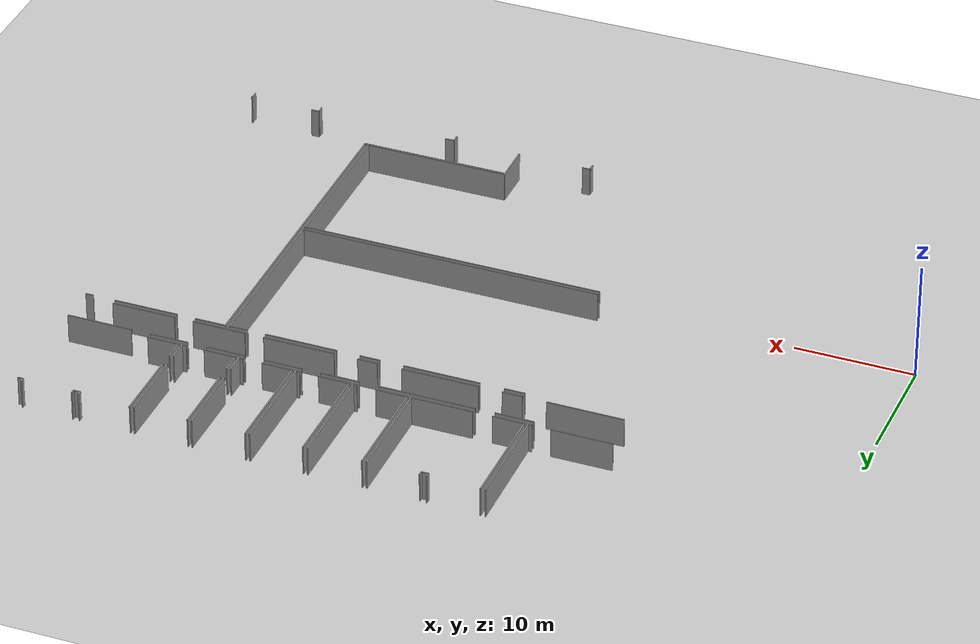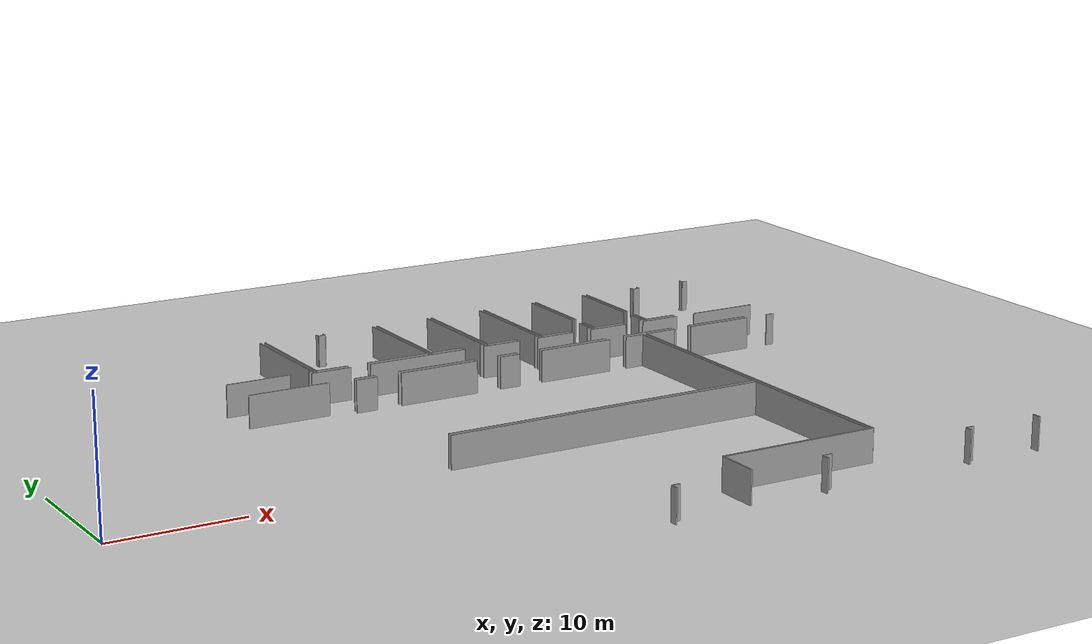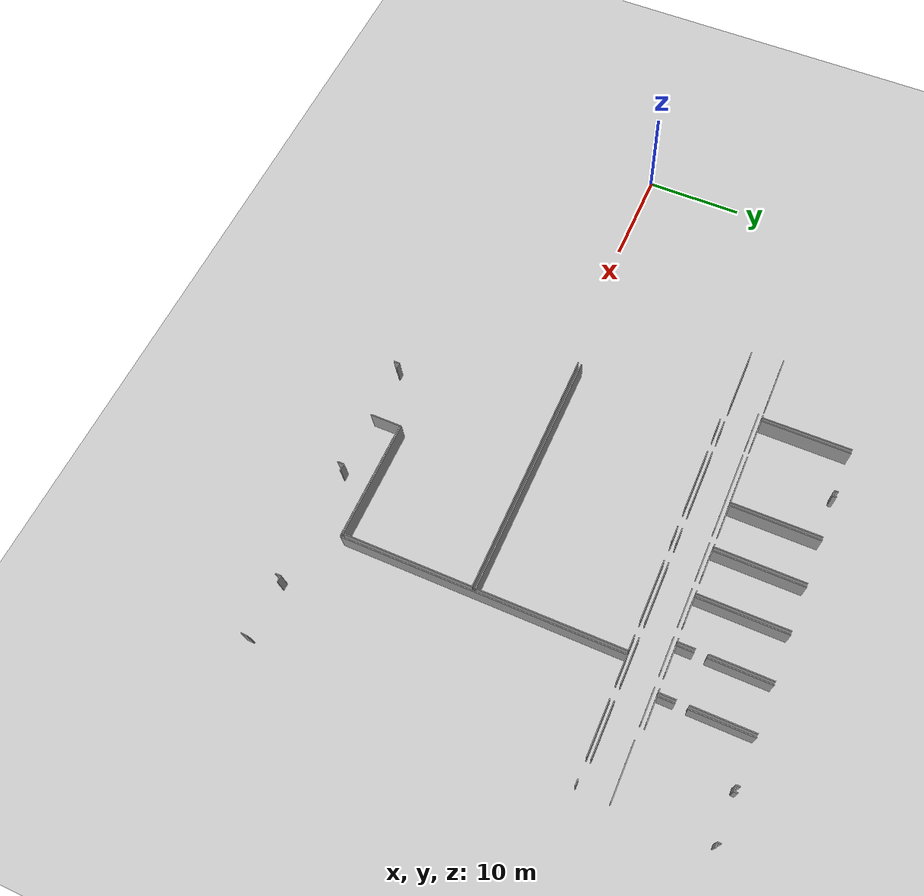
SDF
<sdf version="1.6">
 <world name="default">
  <model name="ground_plane">
   <static>1</static>
   <link name="link">
    <collision name="collision">
     <geometry><plane><normal>0 0 1</normal><size>100 100</size></plane></geometry>
     <surface><friction><ode><mu>100</mu><mu2>50</mu2></ode></friction></surface>
    </collision>
    <visual name="visual">
     <cast_shadows>0</cast_shadows>
     <geometry><plane><normal>0 0 1</normal><size>100 100</size></plane></geometry>
     <material>
      <script><uri>file://media/materials/scripts/gazebo.material</uri><name>Gazebo/Grey</name></script>
     </material>
    </visual>
   </link>
  </model>
  <model name="50010535_PLAN2">
   <static>1</static>
   <link name="Wall_171">
    <collision name="Wall_171_Collision">
     <geometry><box><size>3.20908750151 0.1 2.5</size></box></geometry>
     <pose>1.60454375075 0 1.25 0 0 0</pose>
    </collision>
    <visual name="Wall_171_Visual">
     <pose>1.60454375075 0 1.25 0 0 0</pose>
     <geometry><box><size>3.20908750151 0.1 2.5</size></box></geometry>
     <material>
      <script><uri>file://media/materials/scripts/gazebo.material</uri><name>Gazebo/Grey</name></script>
      <ambient>1 1 1 1</ambient>
     </material>
    </visual>
    <pose>126.736618743 -9.74515098187 0 0 0 0.0</pose>
   </link>
   <link name="Wall_172">
    <collision name="Wall_172_Collision">
     <geometry><box><size>7.99933927562 0.1 2.5</size></box></geometry>
     <pose>3.99966963781 0 1.25 0 0 0</pose>
    </collision>
    <visual name="Wall_172_Visual">
     <pose>3.99966963781 0 1.25 0 0 0</pose>
     <geometry><box><size>7.99933927562 0.1 2.5</size></box></geometry>
     <material>
      <script><uri>file://media/materials/scripts/gazebo.material</uri><name>Gazebo/Grey</name></script>
      <ambient>1 1 1 1</ambient>
     </material>
    </visual>
    <pose>131.553553617 -9.74515098187 0 0 0 0.0</pose>
   </link>
   <link name="Wall_173">
    <collision name="Wall_173_Collision">
     <geometry><box><size>3.18215027668 0.1 2.5</size></box></geometry>
     <pose>1.59107513834 0 1.25 0 0 0</pose>
    </collision>
    <visual name="Wall_173_Visual">
     <pose>1.59107513834 0 1.25 0 0 0</pose>
     <geometry><box><size>3.18215027668 0.1 2.5</size></box></geometry>
     <material>
      <script><uri>file://media/materials/scripts/gazebo.material</uri><name>Gazebo/Grey</name></script>
      <ambient>1 1 1 1</ambient>
     </material>
    </visual>
    <pose>141.166076885 -9.74515098187 0 0 0 0.0</pose>
   </link>
   <link name="Wall_174">
    <collision name="Wall_174_Collision">
     <geometry><box><size>3.15978729757 0.1 2.5</size></box></geometry>
     <pose>1.57989364879 0 1.25 0 0 0</pose>
    </collision>
    <visual name="Wall_174_Visual">
     <pose>1.57989364879 0 1.25 0 0 0</pose>
     <geometry><box><size>3.15978729757 0.1 2.5</size></box></geometry>
     <material>
      <script><uri>file://media/materials/scripts/gazebo.material</uri><name>Gazebo/Grey</name></script>
      <ambient>1 1 1 1</ambient>
     </material>
    </visual>
    <pose>145.961411155 -9.74515098187 0 0 0 0.0</pose>
   </link>
   <link name="Wall_175">
    <collision name="Wall_175_Collision">
     <geometry><box><size>3.24263197017 0.1 2.5</size></box></geometry>
     <pose>1.62131598508 0 1.25 0 0 0</pose>
    </collision>
    <visual name="Wall_175_Visual">
     <pose>1.62131598508 0 1.25 0 0 0</pose>
     <geometry><box><size>3.24263197017 0.1 2.5</size></box></geometry>
     <material>
      <script><uri>file://media/materials/scripts/gazebo.material</uri><name>Gazebo/Grey</name></script>
      <ambient>1 1 1 1</ambient>
     </material>
    </visual>
    <pose>150.733365946 -9.74515098187 0 0 0 0.0</pose>
   </link>
   <link name="Wall_176">
    <collision name="Wall_176_Collision">
     <geometry><box><size>3.18189615192 0.1 2.5</size></box></geometry>
     <pose>1.59094807596 0 1.25 0 0 0</pose>
    </collision>
    <visual name="Wall_176_Visual">
     <pose>1.59094807596 0 1.25 0 0 0</pose>
     <geometry><box><size>3.18189615192 0.1 2.5</size></box></geometry>
     <material>
      <script><uri>file://media/materials/scripts/gazebo.material</uri><name>Gazebo/Grey</name></script>
      <ambient>1 1 1 1</ambient>
     </material>
    </visual>
    <pose>155.564785932 -9.74515098187 0 0 0 0.0</pose>
   </link>
   <link name="Wall_177">
    <collision name="Wall_177_Collision">
     <geometry><box><size>5.46749426631 0.1 2.5</size></box></geometry>
     <pose>2.73374713316 0 1.25 0 0 0</pose>
    </collision>
    <visual name="Wall_177_Visual">
     <pose>2.73374713316 0 1.25 0 0 0</pose>
     <geometry><box><size>5.46749426631 0.1 2.5</size></box></geometry>
     <material>
      <script><uri>file://media/materials/scripts/gazebo.material</uri><name>Gazebo/Grey</name></script>
      <ambient>1 1 1 1</ambient>
     </material>
    </visual>
    <pose>160.398747165 -9.74515098187 0 0 0 0.0</pose>
   </link>
   <link name="Wall_179">
    <collision name="Wall_179_Collision">
     <geometry><box><size>5.31908540498 0.1 2.5</size></box></geometry>
     <pose>2.65954270249 0 1.25 0 0 0</pose>
    </collision>
    <visual name="Wall_179_Visual">
     <pose>2.65954270249 0 1.25 0 0 0</pose>
     <geometry><box><size>5.31908540498 0.1 2.5</size></box></geometry>
     <material>
      <script><uri>file://media/materials/scripts/gazebo.material</uri><name>Gazebo/Grey</name></script>
      <ambient>1 1 1 1</ambient>
     </material>
    </visual>
    <pose>163.300851953 -12.5499259862 0 0 0 3.14159265359</pose>
   </link>
   <link name="Wall_180">
    <collision name="Wall_180_Collision">
     <geometry><box><size>4.42177086841 0.1 2.5</size></box></geometry>
     <pose>2.2108854342 0 1.25 0 0 0</pose>
    </collision>
    <visual name="Wall_180_Visual">
     <pose>2.2108854342 0 1.25 0 0 0</pose>
     <geometry><box><size>4.42177086841 0.1 2.5</size></box></geometry>
     <material>
      <script><uri>file://media/materials/scripts/gazebo.material</uri><name>Gazebo/Grey</name></script>
      <ambient>1 1 1 1</ambient>
     </material>
    </visual>
    <pose>156.402127024 -12.5499259862 0 0 0 3.14159265359</pose>
   </link>
   <link name="Wall_181">
    <collision name="Wall_181_Collision">
     <geometry><box><size>5.93965807513 0.1 2.5</size></box></geometry>
     <pose>2.96982903757 0 1.25 0 0 0</pose>
    </collision>
    <visual name="Wall_181_Visual">
     <pose>2.96982903757 0 1.25 0 0 0</pose>
     <geometry><box><size>5.93965807513 0.1 2.5</size></box></geometry>
     <material>
      <script><uri>file://media/materials/scripts/gazebo.material</uri><name>Gazebo/Grey</name></script>
      <ambient>1 1 1 1</ambient>
     </material>
    </visual>
    <pose>150.39207639 -12.5499259862 0 0 0 3.14159265359</pose>
   </link>
   <link name="Wall_182">
    <collision name="Wall_182_Collision">
     <geometry><box><size>1.6591805747 0.1 2.5</size></box></geometry>
     <pose>0.829590287352 0 1.25 0 0 0</pose>
    </collision>
    <visual name="Wall_182_Visual">
     <pose>0.829590287352 0 1.25 0 0 0</pose>
     <geometry><box><size>1.6591805747 0.1 2.5</size></box></geometry>
     <material>
      <script><uri>file://media/materials/scripts/gazebo.material</uri><name>Gazebo/Grey</name></script>
      <ambient>1 1 1 1</ambient>
     </material>
    </visual>
    <pose>142.463892048 -12.5499259862 0 0 0 3.14159265359</pose>
   </link>
   <link name="Wall_183">
    <collision name="Wall_183_Collision">
     <geometry><box><size>6.39428727534 0.1 2.5</size></box></geometry>
     <pose>3.19714363767 0 1.25 0 0 0</pose>
    </collision>
    <visual name="Wall_183_Visual">
     <pose>3.19714363767 0 1.25 0 0 0</pose>
     <geometry><box><size>6.39428727534 0.1 2.5</size></box></geometry>
     <material>
      <script><uri>file://media/materials/scripts/gazebo.material</uri><name>Gazebo/Grey</name></script>
      <ambient>1 1 1 1</ambient>
     </material>
    </visual>
    <pose>138.794330477 -12.5499259862 0 0 0 3.14159265359</pose>
   </link>
   <link name="Wall_184">
    <collision name="Wall_184_Collision">
     <geometry><box><size>1.64799908515 0.1 2.5</size></box></geometry>
     <pose>0.823999542575 0 1.25 0 0 0</pose>
    </collision>
    <visual name="Wall_184_Visual">
     <pose>0.823999542575 0 1.25 0 0 0</pose>
     <geometry><box><size>1.64799908515 0.1 2.5</size></box></geometry>
     <material>
      <script><uri>file://media/materials/scripts/gazebo.material</uri><name>Gazebo/Grey</name></script>
      <ambient>1 1 1 1</ambient>
     </material>
    </visual>
    <pose>130.455480518 -12.5499259862 0 0 0 3.14159265359</pose>
   </link>
   <link name="Wall_185">
    <collision name="Wall_185_Collision">
     <geometry><box><size>6.372178421 0.1 2.5</size></box></geometry>
     <pose>3.1860892105 0 1.25 0 0 0</pose>
    </collision>
    <visual name="Wall_185_Visual">
     <pose>3.1860892105 0 1.25 0 0 0</pose>
     <geometry><box><size>6.372178421 0.1 2.5</size></box></geometry>
     <material>
      <script><uri>file://media/materials/scripts/gazebo.material</uri><name>Gazebo/Grey</name></script>
      <ambient>1 1 1 1</ambient>
     </material>
    </visual>
    <pose>126.808027801 -12.5499259862 0 0 0 3.14159265359</pose>
   </link>
   <link name="Wall_246">
    <collision name="Wall_246_Collision">
     <geometry><box><size>0.311811083652 0.1 2.5</size></box></geometry>
     <pose>0.155905541826 0 1.25 0 0 0</pose>
    </collision>
    <visual name="Wall_246_Visual">
     <pose>0.155905541826 0 1.25 0 0 0</pose>
     <geometry><box><size>0.311811083652 0.1 2.5</size></box></geometry>
     <material>
      <script><uri>file://media/materials/scripts/gazebo.material</uri><name>Gazebo/Grey</name></script>
      <ambient>1 1 1 1</ambient>
     </material>
    </visual>
    <pose>127.042839082 -9.28518516166 0 0 0 3.14159265359</pose>
   </link>
   <link name="Wall_247">
    <collision name="Wall_247_Collision">
     <geometry><box><size>5.04361416237 0.1 2.5</size></box></geometry>
     <pose>2.52180708119 0 1.25 0 0 0</pose>
    </collision>
    <visual name="Wall_247_Visual">
     <pose>2.52180708119 0 1.25 0 0 0</pose>
     <geometry><box><size>5.04361416237 0.1 2.5</size></box></geometry>
     <material>
      <script><uri>file://media/materials/scripts/gazebo.material</uri><name>Gazebo/Grey</name></script>
      <ambient>1 1 1 1</ambient>
     </material>
    </visual>
    <pose>125.197639181 -9.28518516166 0 0 0 3.14159265359</pose>
   </link>
   <link name="Wall_252">
    <collision name="Wall_252_Collision">
     <geometry><box><size>9.06490162756 0.1 2.5</size></box></geometry>
     <pose>4.53245081378 0 1.25 0 0 0</pose>
    </collision>
    <visual name="Wall_252_Visual">
     <pose>4.53245081378 0 1.25 0 0 0</pose>
     <geometry><box><size>9.06490162756 0.1 2.5</size></box></geometry>
     <material>
      <script><uri>file://media/materials/scripts/gazebo.material</uri><name>Gazebo/Grey</name></script>
      <ambient>1 1 1 1</ambient>
     </material>
    </visual>
    <pose>126.972700647 -0.220554881419 0 0 0 -1.56305888659</pose>
   </link>
   <link name="Wall_253">
    <collision name="Wall_253_Collision">
     <geometry><box><size>5.07233026054 0.1 2.5</size></box></geometry>
     <pose>2.53616513027 0 1.25 0 0 0</pose>
    </collision>
    <visual name="Wall_253_Visual">
     <pose>2.53616513027 0 1.25 0 0 0</pose>
     <geometry><box><size>5.07233026054 0.1 2.5</size></box></geometry>
     <material>
      <script><uri>file://media/materials/scripts/gazebo.material</uri><name>Gazebo/Grey</name></script>
      <ambient>1 1 1 1</ambient>
     </material>
    </visual>
    <pose>136.648500982 -9.27654491973 0 0 0 3.14159265359</pose>
   </link>
   <link name="Wall_254">
    <collision name="Wall_254_Collision">
     <geometry><box><size>2.59410557613 0.1 2.5</size></box></geometry>
     <pose>1.29705278807 0 1.25 0 0 0</pose>
    </collision>
    <visual name="Wall_254_Visual">
     <pose>1.29705278807 0 1.25 0 0 0</pose>
     <geometry><box><size>2.59410557613 0.1 2.5</size></box></geometry>
     <material>
      <script><uri>file://media/materials/scripts/gazebo.material</uri><name>Gazebo/Grey</name></script>
      <ambient>1 1 1 1</ambient>
     </material>
    </visual>
    <pose>129.96146198 -9.27654491973 0 0 0 3.14159265359</pose>
   </link>
   <link name="Wall_255">
    <collision name="Wall_255_Collision">
     <geometry><box><size>9.05682865003 0.1 2.5</size></box></geometry>
     <pose>4.52841432501 0 1.25 0 0 0</pose>
    </collision>
    <visual name="Wall_255_Visual">
     <pose>4.52841432501 0 1.25 0 0 0</pose>
     <geometry><box><size>9.05682865003 0.1 2.5</size></box></geometry>
     <material>
      <script><uri>file://media/materials/scripts/gazebo.material</uri><name>Gazebo/Grey</name></script>
      <ambient>1 1 1 1</ambient>
     </material>
    </visual>
    <pose>127.367356404 -9.27654491973 0 0 0 1.57079632679</pose>
   </link>
   <link name="Wall_256">
    <collision name="Wall_256_Collision">
     <geometry><box><size>0.372597726854 0.1 2.5</size></box></geometry>
     <pose>0.186298863427 0 1.25 0 0 0</pose>
    </collision>
    <visual name="Wall_256_Visual">
     <pose>0.186298863427 0 1.25 0 0 0</pose>
     <geometry><box><size>0.372597726854 0.1 2.5</size></box></geometry>
     <material>
      <script><uri>file://media/materials/scripts/gazebo.material</uri><name>Gazebo/Grey</name></script>
      <ambient>1 1 1 1</ambient>
     </material>
    </visual>
    <pose>131.719497087 -0.219716269703 0 0 0 -1.57079632679</pose>
   </link>
   <link name="Wall_257">
    <collision name="Wall_257_Collision">
     <geometry><box><size>0.563648723341 0.1 2.5</size></box></geometry>
     <pose>0.28182436167 0 1.25 0 0 0</pose>
    </collision>
    <visual name="Wall_257_Visual">
     <pose>0.28182436167 0 1.25 0 0 0</pose>
     <geometry><box><size>0.563648723341 0.1 2.5</size></box></geometry>
     <material>
      <script><uri>file://media/materials/scripts/gazebo.material</uri><name>Gazebo/Grey</name></script>
      <ambient>1 1 1 1</ambient>
     </material>
    </visual>
    <pose>131.719497087 -0.592313996557 0 0 0 0.0</pose>
   </link>
   <link name="Wall_258">
    <collision name="Wall_258_Collision">
     <geometry><box><size>0.363042635782 0.1 2.5</size></box></geometry>
     <pose>0.181521317891 0 1.25 0 0 0</pose>
    </collision>
    <visual name="Wall_258_Visual">
     <pose>0.181521317891 0 1.25 0 0 0</pose>
     <geometry><box><size>0.363042635782 0.1 2.5</size></box></geometry>
     <material>
      <script><uri>file://media/materials/scripts/gazebo.material</uri><name>Gazebo/Grey</name></script>
      <ambient>1 1 1 1</ambient>
     </material>
    </visual>
    <pose>132.28314581 -0.592313996557 0 0 0 1.57079632679</pose>
   </link>
   <link name="Wall_259">
    <collision name="Wall_259_Collision">
     <geometry><box><size>9.04735173394 0.1 2.5</size></box></geometry>
     <pose>4.52367586697 0 1.25 0 0 0</pose>
    </collision>
    <visual name="Wall_259_Visual">
     <pose>4.52367586697 0 1.25 0 0 0</pose>
     <geometry><box><size>9.04735173394 0.1 2.5</size></box></geometry>
     <material>
      <script><uri>file://media/materials/scripts/gazebo.material</uri><name>Gazebo/Grey</name></script>
      <ambient>1 1 1 1</ambient>
     </material>
    </visual>
    <pose>136.610890517 -0.229271360775 0 0 0 -1.56663924588</pose>
   </link>
   <link name="Wall_260">
    <collision name="Wall_260_Collision">
     <geometry><box><size>0.284111484533 0.1 2.5</size></box></geometry>
     <pose>0.142055742267 0 1.25 0 0 0</pose>
    </collision>
    <visual name="Wall_260_Visual">
     <pose>0.142055742267 0 1.25 0 0 0</pose>
     <geometry><box><size>0.284111484533 0.1 2.5</size></box></geometry>
     <material>
      <script><uri>file://media/materials/scripts/gazebo.material</uri><name>Gazebo/Grey</name></script>
      <ambient>1 1 1 1</ambient>
     </material>
    </visual>
    <pose>141.427317141 -9.25392781586 0 0 0 3.14159265359</pose>
   </link>
   <link name="Wall_261">
    <collision name="Wall_261_Collision">
     <geometry><box><size>2.60096694472 0.1 2.5</size></box></geometry>
     <pose>1.30048347236 0 1.25 0 0 0</pose>
    </collision>
    <visual name="Wall_261_Visual">
     <pose>1.30048347236 0 1.25 0 0 0</pose>
     <geometry><box><size>2.60096694472 0.1 2.5</size></box></geometry>
     <material>
      <script><uri>file://media/materials/scripts/gazebo.material</uri><name>Gazebo/Grey</name></script>
      <ambient>1 1 1 1</ambient>
     </material>
    </visual>
    <pose>139.567632129 -9.25392781586 0 0 0 3.14159265359</pose>
   </link>
   <link name="Wall_262">
    <collision name="Wall_262_Collision">
     <geometry><box><size>9.03421154616 0.1 2.5</size></box></geometry>
     <pose>4.51710577308 0 1.25 0 0 0</pose>
    </collision>
    <visual name="Wall_262_Visual">
     <pose>4.51710577308 0 1.25 0 0 0</pose>
     <geometry><box><size>9.03421154616 0.1 2.5</size></box></geometry>
     <material>
      <script><uri>file://media/materials/scripts/gazebo.material</uri><name>Gazebo/Grey</name></script>
      <ambient>1 1 1 1</ambient>
     </material>
    </visual>
    <pose>136.966665184 -9.25392781586 0 0 0 1.57079632679</pose>
   </link>
   <link name="Wall_263">
    <collision name="Wall_263_Collision">
     <geometry><box><size>9.03422856271 0.1 2.5</size></box></geometry>
     <pose>4.51711428135 0 1.25 0 0 0</pose>
    </collision>
    <visual name="Wall_263_Visual">
     <pose>4.51711428135 0 1.25 0 0 0</pose>
     <geometry><box><size>9.03422856271 0.1 2.5</size></box></geometry>
     <material>
      <script><uri>file://media/materials/scripts/gazebo.material</uri><name>Gazebo/Grey</name></script>
      <ambient>1 1 1 1</ambient>
     </material>
    </visual>
    <pose>141.44485175 -0.219716269703 0 0 0 -1.57273723625</pose>
   </link>
   <link name="Wall_264">
    <collision name="Wall_264_Collision">
     <geometry><box><size>0.283094985483 0.1 2.5</size></box></geometry>
     <pose>0.141547492742 0 1.25 0 0 0</pose>
    </collision>
    <visual name="Wall_264_Visual">
     <pose>0.141547492742 0 1.25 0 0 0</pose>
     <geometry><box><size>0.283094985483 0.1 2.5</size></box></geometry>
     <material>
      <script><uri>file://media/materials/scripts/gazebo.material</uri><name>Gazebo/Grey</name></script>
      <ambient>1 1 1 1</ambient>
     </material>
    </visual>
    <pose>146.236628273 -9.28518516166 0 0 0 3.14159265359</pose>
   </link>
   <link name="Wall_265">
    <collision name="Wall_265_Collision">
     <geometry><box><size>2.56157760653 0.1 2.5</size></box></geometry>
     <pose>1.28078880326 0 1.25 0 0 0</pose>
    </collision>
    <visual name="Wall_265_Visual">
     <pose>1.28078880326 0 1.25 0 0 0</pose>
     <geometry><box><size>2.56157760653 0.1 2.5</size></box></geometry>
     <material>
      <script><uri>file://media/materials/scripts/gazebo.material</uri><name>Gazebo/Grey</name></script>
      <ambient>1 1 1 1</ambient>
     </material>
    </visual>
    <pose>144.368557143 -9.28518516166 0 0 0 3.14159265359</pose>
   </link>
   <link name="Wall_266">
    <collision name="Wall_266_Collision">
     <geometry><box><size>9.06656162843 0.1 2.5</size></box></geometry>
     <pose>4.53328081422 0 1.25 0 0 0</pose>
    </collision>
    <visual name="Wall_266_Visual">
     <pose>4.53328081422 0 1.25 0 0 0</pose>
     <geometry><box><size>9.06656162843 0.1 2.5</size></box></geometry>
     <material>
      <script><uri>file://media/materials/scripts/gazebo.material</uri><name>Gazebo/Grey</name></script>
      <ambient>1 1 1 1</ambient>
     </material>
    </visual>
    <pose>141.806979537 -9.28518516166 0 0 0 1.57079632679</pose>
   </link>
   <link name="Wall_267">
    <collision name="Wall_267_Collision">
     <geometry><box><size>9.06660472133 0.1 2.5</size></box></geometry>
     <pose>4.53330236066 0 1.25 0 0 0</pose>
    </collision>
    <visual name="Wall_267_Visual">
     <pose>4.53330236066 0 1.25 0 0 0</pose>
     <geometry><box><size>9.06660472133 0.1 2.5</size></box></geometry>
     <material>
      <script><uri>file://media/materials/scripts/gazebo.material</uri><name>Gazebo/Grey</name></script>
      <ambient>1 1 1 1</ambient>
     </material>
    </visual>
    <pose>146.208674549 -0.218623533224 0 0 0 -1.56771316954</pose>
   </link>
   <link name="Wall_268">
    <collision name="Wall_268_Collision">
     <geometry><box><size>0.323246697966 0.1 2.5</size></box></geometry>
     <pose>0.161623348983 0 1.25 0 0 0</pose>
    </collision>
    <visual name="Wall_268_Visual">
     <pose>0.161623348983 0 1.25 0 0 0</pose>
     <geometry><box><size>0.323246697966 0.1 2.5</size></box></geometry>
     <material>
      <script><uri>file://media/materials/scripts/gazebo.material</uri><name>Gazebo/Grey</name></script>
      <ambient>1 1 1 1</ambient>
     </material>
    </visual>
    <pose>151.035012039 -9.30399039408 0 0 0 3.14159265359</pose>
   </link>
   <link name="Wall_269">
    <collision name="Wall_269_Collision">
     <geometry><box><size>2.55725748556 0.1 2.5</size></box></geometry>
     <pose>1.27862874278 0 1.25 0 0 0</pose>
    </collision>
    <visual name="Wall_269_Visual">
     <pose>1.27862874278 0 1.25 0 0 0</pose>
     <geometry><box><size>2.55725748556 0.1 2.5</size></box></geometry>
     <material>
      <script><uri>file://media/materials/scripts/gazebo.material</uri><name>Gazebo/Grey</name></script>
      <ambient>1 1 1 1</ambient>
     </material>
    </visual>
    <pose>149.128059821 -9.30399039408 0 0 0 3.14159265359</pose>
   </link>
   <link name="Wall_270">
    <collision name="Wall_270_Collision">
     <geometry><box><size>9.08536686086 0.1 2.5</size></box></geometry>
     <pose>4.54268343043 0 1.25 0 0 0</pose>
    </collision>
    <visual name="Wall_270_Visual">
     <pose>4.54268343043 0 1.25 0 0 0</pose>
     <geometry><box><size>9.08536686086 0.1 2.5</size></box></geometry>
     <material>
      <script><uri>file://media/materials/scripts/gazebo.material</uri><name>Gazebo/Grey</name></script>
      <ambient>1 1 1 1</ambient>
     </material>
    </visual>
    <pose>146.570802335 -9.30399039408 0 0 0 1.57079632679</pose>
   </link>
   <link name="Wall_271">
    <collision name="Wall_271_Collision">
     <geometry><box><size>6.20417654047 0.1 2.5</size></box></geometry>
     <pose>3.10208827024 0 1.25 0 0 0</pose>
    </collision>
    <visual name="Wall_271_Visual">
     <pose>3.10208827024 0 1.25 0 0 0</pose>
     <geometry><box><size>6.20417654047 0.1 2.5</size></box></geometry>
     <material>
      <script><uri>file://media/materials/scripts/gazebo.material</uri><name>Gazebo/Grey</name></script>
      <ambient>1 1 1 1</ambient>
     </material>
    </visual>
    <pose>151.032724916 -0.218623533224 0 0 0 -1.57079632679</pose>
   </link>
   <link name="Wall_272">
    <collision name="Wall_272_Collision">
     <geometry><box><size>1.69928300139 0.1 2.5</size></box></geometry>
     <pose>0.849641500696 0 1.25 0 0 0</pose>
    </collision>
    <visual name="Wall_272_Visual">
     <pose>0.849641500696 0 1.25 0 0 0</pose>
     <geometry><box><size>1.69928300139 0.1 2.5</size></box></geometry>
     <material>
      <script><uri>file://media/materials/scripts/gazebo.material</uri><name>Gazebo/Grey</name></script>
      <ambient>1 1 1 1</ambient>
     </material>
    </visual>
    <pose>151.032724916 -7.60470893185 0 0 0 -1.56945039233</pose>
   </link>
   <link name="Wall_273">
    <collision name="Wall_273_Collision">
     <geometry><box><size>0.353741669473 0.1 2.5</size></box></geometry>
     <pose>0.176870834736 0 1.25 0 0 0</pose>
    </collision>
    <visual name="Wall_273_Visual">
     <pose>0.176870834736 0 1.25 0 0 0</pose>
     <geometry><box><size>0.353741669473 0.1 2.5</size></box></geometry>
     <material>
      <script><uri>file://media/materials/scripts/gazebo.material</uri><name>Gazebo/Grey</name></script>
      <ambient>1 1 1 1</ambient>
     </material>
    </visual>
    <pose>155.871768645 -9.29026765691 0 0 0 3.14159265359</pose>
   </link>
   <link name="Wall_274">
    <collision name="Wall_274_Collision">
     <geometry><box><size>2.63629028672 0.1 2.5</size></box></geometry>
     <pose>1.31814514336 0 1.25 0 0 0</pose>
    </collision>
    <visual name="Wall_274_Visual">
     <pose>1.31814514336 0 1.25 0 0 0</pose>
     <geometry><box><size>2.63629028672 0.1 2.5</size></box></geometry>
     <material>
      <script><uri>file://media/materials/scripts/gazebo.material</uri><name>Gazebo/Grey</name></script>
      <ambient>1 1 1 1</ambient>
     </material>
    </visual>
    <pose>154.010050634 -9.29026765691 0 0 0 3.14159265359</pose>
   </link>
   <link name="Wall_275">
    <collision name="Wall_275_Collision">
     <geometry><box><size>1.67661353341 0.1 2.5</size></box></geometry>
     <pose>0.838306766707 0 1.25 0 0 0</pose>
    </collision>
    <visual name="Wall_275_Visual">
     <pose>0.838306766707 0 1.25 0 0 0</pose>
     <geometry><box><size>1.67661353341 0.1 2.5</size></box></geometry>
     <material>
      <script><uri>file://media/materials/scripts/gazebo.material</uri><name>Gazebo/Grey</name></script>
      <ambient>1 1 1 1</ambient>
     </material>
    </visual>
    <pose>151.373760348 -9.29026765691 0 0 0 1.57079632679</pose>
   </link>
   <link name="Wall_276">
    <collision name="Wall_276_Collision">
     <geometry><box><size>6.21507849279 0.1 2.5</size></box></geometry>
     <pose>3.10753924639 0 1.25 0 0 0</pose>
    </collision>
    <visual name="Wall_276_Visual">
     <pose>3.10753924639 0 1.25 0 0 0</pose>
     <geometry><box><size>6.21507849279 0.1 2.5</size></box></geometry>
     <material>
      <script><uri>file://media/materials/scripts/gazebo.material</uri><name>Gazebo/Grey</name></script>
      <ambient>1 1 1 1</ambient>
     </material>
    </visual>
    <pose>151.373760348 -6.43479476249 0 0 0 1.57079632679</pose>
   </link>
   <link name="Wall_277">
    <collision name="Wall_277_Collision">
     <geometry><box><size>6.22887746739 0.1 2.5</size></box></geometry>
     <pose>3.1144387337 0 1.25 0 0 0</pose>
    </collision>
    <visual name="Wall_277_Visual">
     <pose>3.1144387337 0 1.25 0 0 0</pose>
     <geometry><box><size>6.22887746739 0.1 2.5</size></box></geometry>
     <material>
      <script><uri>file://media/materials/scripts/gazebo.material</uri><name>Gazebo/Grey</name></script>
      <ambient>1 1 1 1</ambient>
     </material>
    </visual>
    <pose>155.856267034 -0.219716269703 0 0 0 -1.57079632679</pose>
   </link>
   <link name="Wall_278">
    <collision name="Wall_278_Collision">
     <geometry><box><size>1.68563000553 0.1 2.5</size></box></geometry>
     <pose>0.842815002765 0 1.25 0 0 0</pose>
    </collision>
    <visual name="Wall_278_Visual">
     <pose>0.842815002765 0 1.25 0 0 0</pose>
     <geometry><box><size>1.68563000553 0.1 2.5</size></box></geometry>
     <material>
      <script><uri>file://media/materials/scripts/gazebo.material</uri><name>Gazebo/Grey</name></script>
      <ambient>1 1 1 1</ambient>
     </material>
    </visual>
    <pose>155.856267034 -7.60470893185 0 0 0 -1.56159986673</pose>
   </link>
   <link name="Wall_280">
    <collision name="Wall_280_Collision">
     <geometry><box><size>2.60376231711 0.1 2.5</size></box></geometry>
     <pose>1.30188115855 0 1.25 0 0 0</pose>
    </collision>
    <visual name="Wall_280_Visual">
     <pose>1.30188115855 0 1.25 0 0 0</pose>
     <geometry><box><size>2.60376231711 0.1 2.5</size></box></geometry>
     <material>
      <script><uri>file://media/materials/scripts/gazebo.material</uri><name>Gazebo/Grey</name></script>
      <ambient>1 1 1 1</ambient>
     </material>
    </visual>
    <pose>158.803860155 -9.28721815976 0 0 0 3.14159265359</pose>
   </link>
   <link name="Wall_281">
    <collision name="Wall_281_Collision">
     <geometry><box><size>1.67742673265 0.1 2.5</size></box></geometry>
     <pose>0.838713366327 0 1.25 0 0 0</pose>
    </collision>
    <visual name="Wall_281_Visual">
     <pose>0.838713366327 0 1.25 0 0 0</pose>
     <geometry><box><size>1.67742673265 0.1 2.5</size></box></geometry>
     <material>
      <script><uri>file://media/materials/scripts/gazebo.material</uri><name>Gazebo/Grey</name></script>
      <ambient>1 1 1 1</ambient>
     </material>
    </visual>
    <pose>156.200097838 -9.28721815976 0 0 0 1.57079632679</pose>
   </link>
   <link name="Wall_282">
    <collision name="Wall_282_Collision">
     <geometry><box><size>6.20803923686 0.1 2.5</size></box></geometry>
     <pose>3.10401961843 0 1.25 0 0 0</pose>
    </collision>
    <visual name="Wall_282_Visual">
     <pose>3.10401961843 0 1.25 0 0 0</pose>
     <geometry><box><size>6.20803923686 0.1 2.5</size></box></geometry>
     <material>
      <script><uri>file://media/materials/scripts/gazebo.material</uri><name>Gazebo/Grey</name></script>
      <ambient>1 1 1 1</ambient>
     </material>
    </visual>
    <pose>156.200097838 -6.43731059764 0 0 0 1.57079632679</pose>
   </link>
   <link name="Wall_283">
    <collision name="Wall_283_Collision">
     <geometry><box><size>0.382152817926 0.1 2.5</size></box></geometry>
     <pose>0.191076408963 0 1.25 0 0 0</pose>
    </collision>
    <visual name="Wall_283_Visual">
     <pose>0.191076408963 0 1.25 0 0 0</pose>
     <geometry><box><size>0.382152817926 0.1 2.5</size></box></geometry>
     <material>
      <script><uri>file://media/materials/scripts/gazebo.material</uri><name>Gazebo/Grey</name></script>
      <ambient>1 1 1 1</ambient>
     </material>
    </visual>
    <pose>160.532670915 -0.229271360775 0 0 0 -1.57079632679</pose>
   </link>
   <link name="Wall_284">
    <collision name="Wall_284_Collision">
     <geometry><box><size>0.554246107126 0.1 2.5</size></box></geometry>
     <pose>0.277123053563 0 1.25 0 0 0</pose>
    </collision>
    <visual name="Wall_284_Visual">
     <pose>0.277123053563 0 1.25 0 0 0</pose>
     <geometry><box><size>0.554246107126 0.1 2.5</size></box></geometry>
     <material>
      <script><uri>file://media/materials/scripts/gazebo.material</uri><name>Gazebo/Grey</name></script>
      <ambient>1 1 1 1</ambient>
     </material>
    </visual>
    <pose>160.532670915 -0.611424178701 0 0 0 0.0</pose>
   </link>
   <link name="Wall_285">
    <collision name="Wall_285_Collision">
     <geometry><box><size>0.372597726854 0.1 2.5</size></box></geometry>
     <pose>0.186298863427 0 1.25 0 0 0</pose>
    </collision>
    <visual name="Wall_285_Visual">
     <pose>0.186298863427 0 1.25 0 0 0</pose>
     <geometry><box><size>0.372597726854 0.1 2.5</size></box></geometry>
     <material>
      <script><uri>file://media/materials/scripts/gazebo.material</uri><name>Gazebo/Grey</name></script>
      <ambient>1 1 1 1</ambient>
     </material>
    </visual>
    <pose>161.086917022 -0.611424178701 0 0 0 1.57079632679</pose>
   </link>
   <link name="Wall_286">
    <collision name="Wall_286_Collision">
     <geometry><box><size>0.35348754471 0.1 2.5</size></box></geometry>
     <pose>0.176743772355 0 1.25 0 0 0</pose>
    </collision>
    <visual name="Wall_286_Visual">
     <pose>0.176743772355 0 1.25 0 0 0</pose>
     <geometry><box><size>0.35348754471 0.1 2.5</size></box></geometry>
     <material>
      <script><uri>file://media/materials/scripts/gazebo.material</uri><name>Gazebo/Grey</name></script>
      <ambient>1 1 1 1</ambient>
     </material>
    </visual>
    <pose>165.366886273 -0.238826451847 0 0 0 -1.57079632679</pose>
   </link>
   <link name="Wall_287">
    <collision name="Wall_287_Collision">
     <geometry><box><size>0.44903845543 0.1 2.5</size></box></geometry>
     <pose>0.224519227715 0 1.25 0 0 0</pose>
    </collision>
    <visual name="Wall_287_Visual">
     <pose>0.224519227715 0 1.25 0 0 0</pose>
     <geometry><box><size>0.44903845543 0.1 2.5</size></box></geometry>
     <material>
      <script><uri>file://media/materials/scripts/gazebo.material</uri><name>Gazebo/Grey</name></script>
      <ambient>1 1 1 1</ambient>
     </material>
    </visual>
    <pose>165.366886273 -0.592313996557 0 0 0 0.0</pose>
   </link>
   <link name="Wall_324">
    <collision name="Wall_324_Collision">
     <geometry><box><size>25.1916418366 0.1 2.5</size></box></geometry>
     <pose>12.5958209183 0 1.25 0 0 0</pose>
    </collision>
    <visual name="Wall_324_Visual">
     <pose>12.5958209183 0 1.25 0 0 0</pose>
     <geometry><box><size>25.1916418366 0.1 2.5</size></box></geometry>
     <material>
      <script><uri>file://media/materials/scripts/gazebo.material</uri><name>Gazebo/Grey</name></script>
      <ambient>1 1 1 1</ambient>
     </material>
    </visual>
    <pose>153.513236724 -27.7664085183 0 0 0 3.14159265359</pose>
   </link>
   <link name="Wall_330">
    <collision name="Wall_330_Collision">
     <geometry><box><size>1.68967554621 0.1 2.5</size></box></geometry>
     <pose>0.844837773105 0 1.25 0 0 0</pose>
    </collision>
    <visual name="Wall_330_Visual">
     <pose>0.844837773105 0 1.25 0 0 0</pose>
     <geometry><box><size>1.68967554621 0.1 2.5</size></box></geometry>
     <material>
      <script><uri>file://media/materials/scripts/gazebo.material</uri><name>Gazebo/Grey</name></script>
      <ambient>1 1 1 1</ambient>
     </material>
    </visual>
    <pose>128.756148231 -13.0043010616 0 0 0 0.0</pose>
   </link>
   <link name="Wall_331">
    <collision name="Wall_331_Collision">
     <geometry><box><size>6.34574944569 0.1 2.5</size></box></geometry>
     <pose>3.17287472285 0 1.25 0 0 0</pose>
    </collision>
    <visual name="Wall_331_Visual">
     <pose>3.17287472285 0 1.25 0 0 0</pose>
     <geometry><box><size>6.34574944569 0.1 2.5</size></box></geometry>
     <material>
      <script><uri>file://media/materials/scripts/gazebo.material</uri><name>Gazebo/Grey</name></script>
      <ambient>1 1 1 1</ambient>
     </material>
    </visual>
    <pose>132.437145417 -13.0043010616 0 0 0 0.0</pose>
   </link>
   <link name="Wall_332">
    <collision name="Wall_332_Collision">
     <geometry><box><size>1.68560955001 0.1 2.5</size></box></geometry>
     <pose>0.842804775004 0 1.25 0 0 0</pose>
    </collision>
    <visual name="Wall_332_Visual">
     <pose>0.842804775004 0 1.25 0 0 0</pose>
     <geometry><box><size>1.68560955001 0.1 2.5</size></box></geometry>
     <material>
      <script><uri>file://media/materials/scripts/gazebo.material</uri><name>Gazebo/Grey</name></script>
      <ambient>1 1 1 1</ambient>
     </material>
    </visual>
    <pose>140.773454127 -13.0043010616 0 0 0 0.0</pose>
   </link>
   <link name="Wall_333">
    <collision name="Wall_333_Collision">
     <geometry><box><size>6.02987236584 0.1 2.5</size></box></geometry>
     <pose>3.01493618292 0 1.25 0 0 0</pose>
    </collision>
    <visual name="Wall_333_Visual">
     <pose>3.01493618292 0 1.25 0 0 0</pose>
     <geometry><box><size>6.02987236584 0.1 2.5</size></box></geometry>
     <material>
      <script><uri>file://media/materials/scripts/gazebo.material</uri><name>Gazebo/Grey</name></script>
      <ambient>1 1 1 1</ambient>
     </material>
    </visual>
    <pose>144.391428372 -13.0043010616 0 0 0 0.0</pose>
   </link>
   <link name="Wall_334">
    <collision name="Wall_334_Collision">
     <geometry><box><size>1.53720068868 0.1 2.5</size></box></geometry>
     <pose>0.768600344339 0 1.25 0 0 0</pose>
    </collision>
    <visual name="Wall_334_Visual">
     <pose>0.768600344339 0 1.25 0 0 0</pose>
     <geometry><box><size>1.53720068868 0.1 2.5</size></box></geometry>
     <material>
      <script><uri>file://media/materials/scripts/gazebo.material</uri><name>Gazebo/Grey</name></script>
      <ambient>1 1 1 1</ambient>
     </material>
    </visual>
    <pose>151.924956958 -13.0043010616 0 0 0 0.0</pose>
   </link>
   <link name="Wall_335">
    <collision name="Wall_335_Collision">
     <geometry><box><size>14.762195827 0.1 2.5</size></box></geometry>
     <pose>7.38109791349 0 1.25 0 0 0</pose>
    </collision>
    <visual name="Wall_335_Visual">
     <pose>7.38109791349 0 1.25 0 0 0</pose>
     <geometry><box><size>14.762195827 0.1 2.5</size></box></geometry>
     <material>
      <script><uri>file://media/materials/scripts/gazebo.material</uri><name>Gazebo/Grey</name></script>
      <ambient>1 1 1 1</ambient>
     </material>
    </visual>
    <pose>153.462157646 -13.0043010616 0 0 0 -1.56733619256</pose>
   </link>
   <link name="Wall_339">
    <collision name="Wall_339_Collision">
     <geometry><box><size>0.661995006448 0.1 2.5</size></box></geometry>
     <pose>0.330997503224 0 1.25 0 0 0</pose>
    </collision>
    <visual name="Wall_339_Visual">
     <pose>0.330997503224 0 1.25 0 0 0</pose>
     <geometry><box><size>0.661995006448 0.1 2.5</size></box></geometry>
     <material>
      <script><uri>file://media/materials/scripts/gazebo.material</uri><name>Gazebo/Grey</name></script>
      <ambient>1 1 1 1</ambient>
     </material>
    </visual>
    <pose>159.968005692 -44.5894677992 0 0 0 3.14159265359</pose>
   </link>
   <link name="Wall_340">
    <collision name="Wall_340_Collision">
     <geometry><box><size>0.572288965268 0.1 2.5</size></box></geometry>
     <pose>0.286144482634 0 1.25 0 0 0</pose>
    </collision>
    <visual name="Wall_340_Visual">
     <pose>0.286144482634 0 1.25 0 0 0</pose>
     <geometry><box><size>0.572288965268 0.1 2.5</size></box></geometry>
     <material>
      <script><uri>file://media/materials/scripts/gazebo.material</uri><name>Gazebo/Grey</name></script>
      <ambient>1 1 1 1</ambient>
     </material>
    </visual>
    <pose>159.306010686 -44.5894677992 0 0 0 -1.57079632679</pose>
   </link>
   <link name="Wall_348">
    <collision name="Wall_348_Collision">
     <geometry><box><size>0.735182938063 0.1 2.5</size></box></geometry>
     <pose>0.367591469032 0 1.25 0 0 0</pose>
    </collision>
    <visual name="Wall_348_Visual">
     <pose>0.367591469032 0 1.25 0 0 0</pose>
     <geometry><box><size>0.735182938063 0.1 2.5</size></box></geometry>
     <material>
      <script><uri>file://media/materials/scripts/gazebo.material</uri><name>Gazebo/Grey</name></script>
      <ambient>1 1 1 1</ambient>
     </material>
    </visual>
    <pose>147.960610662 -44.5434712172 0 0 0 3.14159265359</pose>
   </link>
   <link name="Wall_349">
    <collision name="Wall_349_Collision">
     <geometry><box><size>0.651830015946 0.1 2.5</size></box></geometry>
     <pose>0.325915007973 0 1.25 0 0 0</pose>
    </collision>
    <visual name="Wall_349_Visual">
     <pose>0.325915007973 0 1.25 0 0 0</pose>
     <geometry><box><size>0.651830015946 0.1 2.5</size></box></geometry>
     <material>
      <script><uri>file://media/materials/scripts/gazebo.material</uri><name>Gazebo/Grey</name></script>
      <ambient>1 1 1 1</ambient>
     </material>
    </visual>
    <pose>147.225427724 -44.5434712172 0 0 0 -1.57079632679</pose>
   </link>
   <link name="Wall_354">
    <collision name="Wall_354_Collision">
     <geometry><box><size>12.1692725043 0.1 2.5</size></box></geometry>
     <pose>6.08463625217 0 1.25 0 0 0</pose>
    </collision>
    <visual name="Wall_354_Visual">
     <pose>6.08463625217 0 1.25 0 0 0</pose>
     <geometry><box><size>12.1692725043 0.1 2.5</size></box></geometry>
     <material>
      <script><uri>file://media/materials/scripts/gazebo.material</uri><name>Gazebo/Grey</name></script>
      <ambient>1 1 1 1</ambient>
     </material>
    </visual>
    <pose>141.657808301 -41.4192613864 0 0 0 0.0</pose>
   </link>
   <link name="Wall_355">
    <collision name="Wall_355_Collision">
     <geometry><box><size>28.4436764229 0.1 2.5</size></box></geometry>
     <pose>14.2218382115 0 1.25 0 0 0</pose>
    </collision>
    <visual name="Wall_355_Visual">
     <pose>14.2218382115 0 1.25 0 0 0</pose>
     <geometry><box><size>28.4436764229 0.1 2.5</size></box></geometry>
     <material>
      <script><uri>file://media/materials/scripts/gazebo.material</uri><name>Gazebo/Grey</name></script>
      <ambient>1 1 1 1</ambient>
     </material>
    </visual>
    <pose>153.827080805 -41.4192613864 0 0 0 1.57079632679</pose>
   </link>
   <link name="Wall_356">
    <collision name="Wall_356_Collision">
     <geometry><box><size>2.56589772749 0.1 2.5</size></box></geometry>
     <pose>1.28294886374 0 1.25 0 0 0</pose>
    </collision>
    <visual name="Wall_356_Visual">
     <pose>1.28294886374 0 1.25 0 0 0</pose>
     <geometry><box><size>2.56589772749 0.1 2.5</size></box></geometry>
     <material>
      <script><uri>file://media/materials/scripts/gazebo.material</uri><name>Gazebo/Grey</name></script>
      <ambient>1 1 1 1</ambient>
     </material>
    </visual>
    <pose>153.827080805 -12.9755849634 0 0 0 0.0</pose>
   </link>
   <link name="Wall_357">
    <collision name="Wall_357_Collision">
     <geometry><box><size>5.34449788123 0.1 2.5</size></box></geometry>
     <pose>2.67224894062 0 1.25 0 0 0</pose>
    </collision>
    <visual name="Wall_357_Visual">
     <pose>2.67224894062 0 1.25 0 0 0</pose>
     <geometry><box><size>5.34449788123 0.1 2.5</size></box></geometry>
     <material>
      <script><uri>file://media/materials/scripts/gazebo.material</uri><name>Gazebo/Grey</name></script>
      <ambient>1 1 1 1</ambient>
     </material>
    </visual>
    <pose>157.943647834 -12.9755849634 0 0 0 0.0</pose>
   </link>
   <link name="Wall_358">
    <collision name="Wall_358_Collision">
     <geometry><box><size>0.649797017846 0.1 2.5</size></box></geometry>
     <pose>0.324898508923 0 1.25 0 0 0</pose>
    </collision>
    <visual name="Wall_358_Visual">
     <pose>0.324898508923 0 1.25 0 0 0</pose>
     <geometry><box><size>0.649797017846 0.1 2.5</size></box></geometry>
     <material>
      <script><uri>file://media/materials/scripts/gazebo.material</uri><name>Gazebo/Grey</name></script>
      <ambient>1 1 1 1</ambient>
     </material>
    </visual>
    <pose>165.16612771 -12.9755849634 0 0 0 0.0</pose>
   </link>
   <link name="Wall_361">
    <collision name="Wall_361_Collision">
     <geometry><box><size>0.69094672354 0.1 2.5</size></box></geometry>
     <pose>0.34547336177 0 1.25 0 0 0</pose>
    </collision>
    <visual name="Wall_361_Visual">
     <pose>0.34547336177 0 1.25 0 0 0</pose>
     <geometry><box><size>0.69094672354 0.1 2.5</size></box></geometry>
     <material>
      <script><uri>file://media/materials/scripts/gazebo.material</uri><name>Gazebo/Grey</name></script>
      <ambient>1 1 1 1</ambient>
     </material>
    </visual>
    <pose>165.337153676 -44.5561774553 0 0 0 -1.59691253624</pose>
   </link>
   <link name="Wall_625">
    <collision name="Wall_625_Collision">
     <geometry><box><size>0.65919963406 0.1 2.5</size></box></geometry>
     <pose>0.32959981703 0 1.25 0 0 0</pose>
    </collision>
    <visual name="Wall_625_Visual">
     <pose>0.32959981703 0 1.25 0 0 0</pose>
     <geometry><box><size>0.65919963406 0.1 2.5</size></box></geometry>
     <material>
      <script><uri>file://media/materials/scripts/gazebo.material</uri><name>Gazebo/Grey</name></script>
      <ambient>1 1 1 1</ambient>
     </material>
    </visual>
    <pose>135.951690883 -44.5765074363 0 0 0 3.14159265359</pose>
   </link>
   <link name="Wall_626">
    <collision name="Wall_626_Collision">
     <geometry><box><size>0.611424178701 0.1 2.5</size></box></geometry>
     <pose>0.30571208935 0 1.25 0 0 0</pose>
    </collision>
    <visual name="Wall_626_Visual">
     <pose>0.30571208935 0 1.25 0 0 0</pose>
     <geometry><box><size>0.611424178701 0.1 2.5</size></box></geometry>
     <material>
      <script><uri>file://media/materials/scripts/gazebo.material</uri><name>Gazebo/Grey</name></script>
      <ambient>1 1 1 1</ambient>
     </material>
    </visual>
    <pose>135.292491249 -44.5765074363 0 0 0 -1.57079632679</pose>
   </link>
   <link name="Wall_641">
    <collision name="Wall_641_Collision">
     <geometry><box><size>25.1885923394 0.1 2.5</size></box></geometry>
     <pose>12.5942961697 0 1.25 0 0 0</pose>
    </collision>
    <visual name="Wall_641_Visual">
     <pose>12.5942961697 0 1.25 0 0 0</pose>
     <geometry><box><size>25.1885923394 0.1 2.5</size></box></geometry>
     <material>
      <script><uri>file://media/materials/scripts/gazebo.material</uri><name>Gazebo/Grey</name></script>
      <ambient>1 1 1 1</ambient>
     </material>
    </visual>
    <pose>128.292624664 -28.1445461649 0 0 0 0.0</pose>
   </link>
   <link name="Wall_642">
    <collision name="Wall_642_Collision">
     <geometry><box><size>13.148923464 0.1 2.5</size></box></geometry>
     <pose>6.57446173199 0 1.25 0 0 0</pose>
    </collision>
    <visual name="Wall_642_Visual">
     <pose>6.57446173199 0 1.25 0 0 0</pose>
     <geometry><box><size>13.148923464 0.1 2.5</size></box></geometry>
     <material>
      <script><uri>file://media/materials/scripts/gazebo.material</uri><name>Gazebo/Grey</name></script>
      <ambient>1 1 1 1</ambient>
     </material>
    </visual>
    <pose>153.481217003 -28.1445461649 0 0 0 -1.57079632679</pose>
   </link>
   <link name="Wall_643">
    <collision name="Wall_643_Collision">
     <geometry><box><size>11.9875732991 0.1 2.5</size></box></geometry>
     <pose>5.99378664956 0 1.25 0 0 0</pose>
    </collision>
    <visual name="Wall_643_Visual">
     <pose>5.99378664956 0 1.25 0 0 0</pose>
     <geometry><box><size>11.9875732991 0.1 2.5</size></box></geometry>
     <material>
      <script><uri>file://media/materials/scripts/gazebo.material</uri><name>Gazebo/Grey</name></script>
      <ambient>1 1 1 1</ambient>
     </material>
    </visual>
    <pose>153.481217003 -41.2934696289 0 0 0 3.14159265359</pose>
   </link>
   <link name="Wall_644">
    <collision name="Wall_644_Collision">
     <geometry><box><size>3.29752291888 0.1 2.5</size></box></geometry>
     <pose>1.64876145944 0 1.25 0 0 0</pose>
    </collision>
    <visual name="Wall_644_Visual">
     <pose>1.64876145944 0 1.25 0 0 0</pose>
     <geometry><box><size>3.29752291888 0.1 2.5</size></box></geometry>
     <material>
      <script><uri>file://media/materials/scripts/gazebo.material</uri><name>Gazebo/Grey</name></script>
      <ambient>1 1 1 1</ambient>
     </material>
    </visual>
    <pose>141.493643704 -41.2934696289 0 0 0 -1.57079632679</pose>
   </link>
   <pose>-102.6 29.7873404573 0 0 0 0</pose>
  </model>
 </world>
</sdf>
